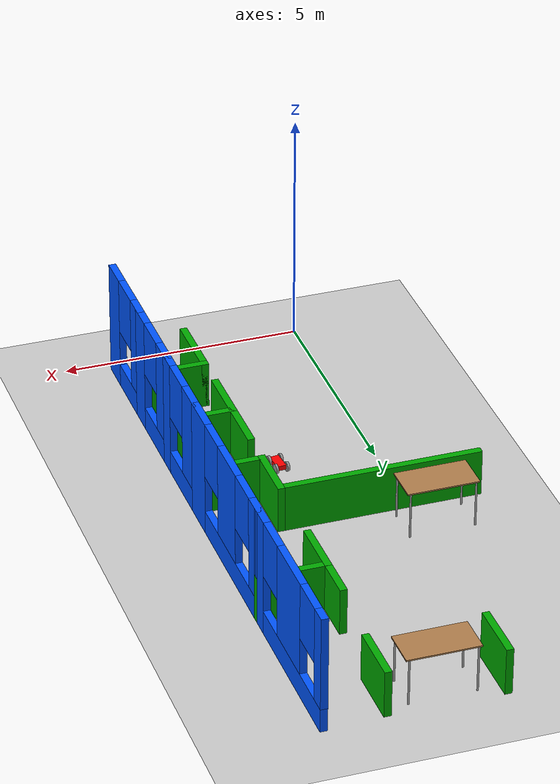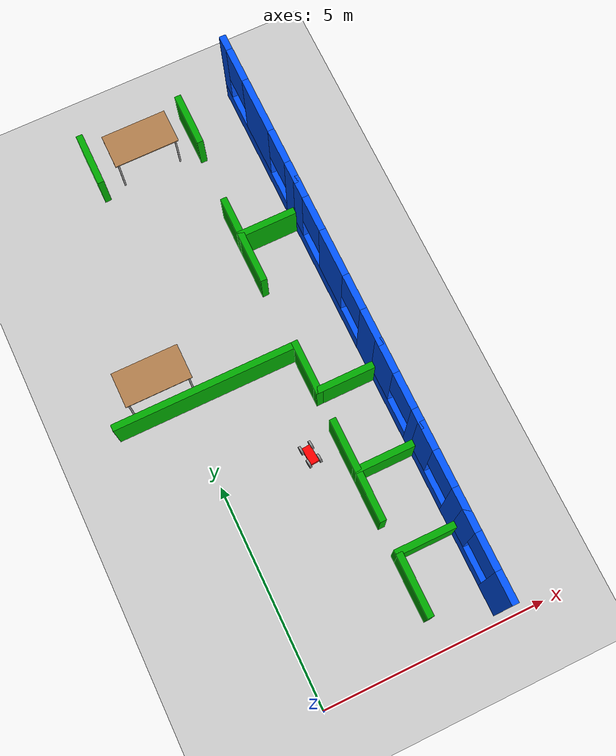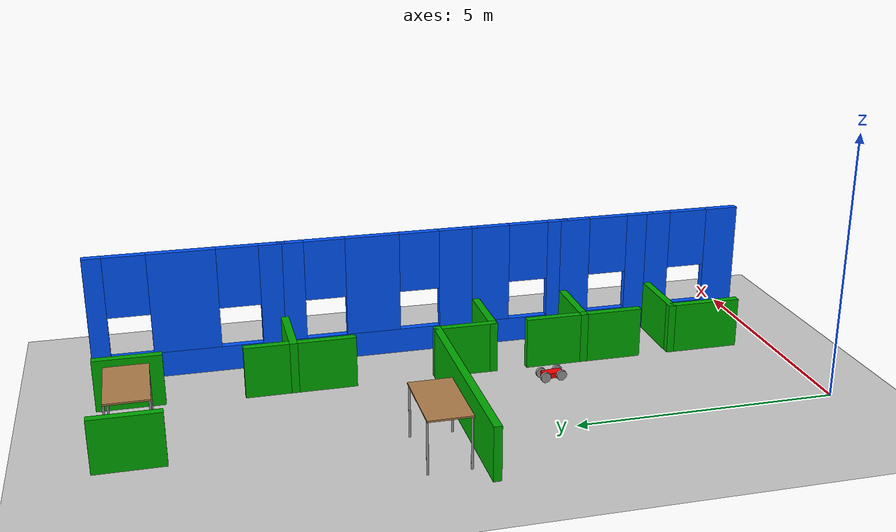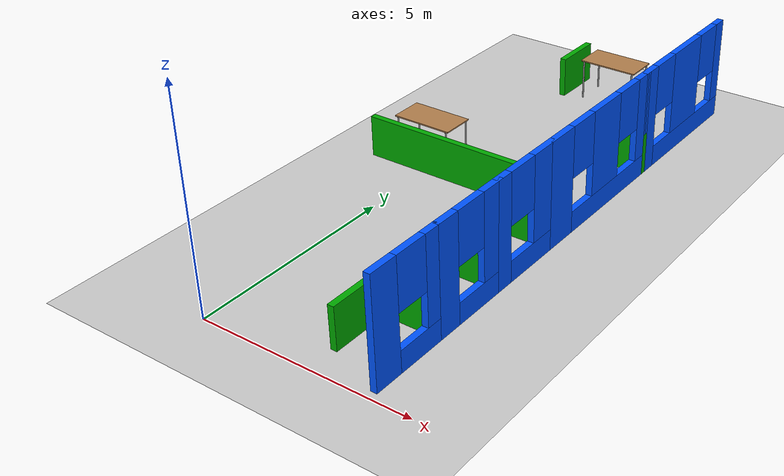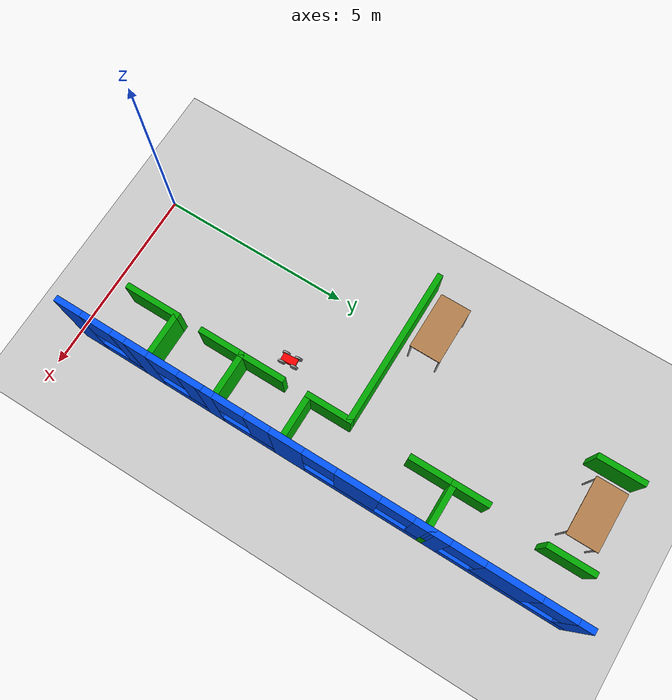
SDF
<sdf version="1.6">
 <world name="default">
  <model name="ground_plane">
   <static>1</static>
   <link name="link">
    <collision name="collision">
     <geometry><plane><normal>0 0 1</normal><size>100 100</size></plane></geometry>
     <surface><friction><ode><mu>100</mu><mu2>50</mu2></ode></friction></surface>
    </collision>
    <visual name="visual">
     <cast_shadows>0</cast_shadows>
     <geometry><plane><normal>0 0 1</normal><size>100 100</size></plane></geometry>
     <material>
      <script><uri>file://media/materials/scripts/gazebo.material</uri><name>Gazebo/Grey</name></script>
     </material>
    </visual>
   </link>
  </model>
  <model name="AMG">
   <pose>-3.41412 2.5474 0 0 -0 0</pose>
   <link name="Wall_101">
    <collision name="Wall_101_Collision">
     <geometry><box><size>1.25 0.15 1</size></box></geometry>
     <pose>0 0 0.5 0 -0 0</pose>
    </collision>
    <visual name="Wall_101_Visual">
     <pose>0 0 0.5 0 -0 0</pose>
     <geometry><box><size>1.25 0.15 1</size></box></geometry>
     <material>
      <script><uri>file://media/materials/scripts/gazebo.material</uri><name>Gazebo/Grey</name></script>
      <ambient>0 0.666667 0 1</ambient>
     </material>
     <meta><layer>0</layer></meta>
    </visual>
    <pose>6.17014 10.0946 0 0 0 -1.5708</pose>
   </link>
   <link name="Wall_103">
    <collision name="Wall_103_Collision">
     <geometry><box><size>1 0.15 1</size></box></geometry>
     <pose>0 0 0.5 0 -0 0</pose>
    </collision>
    <visual name="Wall_103_Visual">
     <pose>0 0 0.5 0 -0 0</pose>
     <geometry><box><size>1 0.15 1</size></box></geometry>
     <material>
      <script><uri>file://media/materials/scripts/gazebo.material</uri><name>Gazebo/Grey</name></script>
      <ambient>0 0.666667 0 1</ambient>
     </material>
     <meta><layer>0</layer></meta>
    </visual>
    <pose>6.07514 7.5266 0 0 -0 1.5708</pose>
   </link>
   <link name="Wall_105">
    <collision name="Wall_105_Collision">
     <geometry><box><size>1.25 0.15 1</size></box></geometry>
     <pose>0 0 0.5 0 -0 0</pose>
    </collision>
    <visual name="Wall_105_Visual">
     <pose>0 0 0.5 0 -0 0</pose>
     <geometry><box><size>1.25 0.15 1</size></box></geometry>
     <material>
      <script><uri>file://media/materials/scripts/gazebo.material</uri><name>Gazebo/Grey</name></script>
      <ambient>0 0.666667 0 1</ambient>
     </material>
     <meta><layer>0</layer></meta>
    </visual>
    <pose>3.82113 10.1446 0 0 0 -1.5708</pose>
   </link>
   <link name="Wall_45">
    <pose>7.42514 -1.3734 0 0 -0 1.5708</pose>
    <visual name="Wall_45_Visual_0">
     <pose>-0.657384 0 1.25 0 -0 0</pose>
     <geometry><box><size>0.685231 0.15 2.5</size></box></geometry>
     <material>
      <script><uri>file://media/materials/scripts/gazebo.material</uri><name>Gazebo/Grey</name></script>
      <ambient>0 0.333333 1 1</ambient>
     </material>
     <meta><layer>0</layer></meta>
    </visual>
    <collision name="Wall_45_Collision_0">
     <geometry><box><size>0.685231 0.15 2.5</size></box></geometry>
     <pose>-0.657384 0 1.25 0 -0 0</pose>
    </collision>
    <visual name="Wall_45_Visual_1">
     <pose>0.342616 0 0.25 0 -0 0</pose>
     <geometry><box><size>1.31477 0.15 0.5</size></box></geometry>
     <material>
      <script><uri>file://media/materials/scripts/gazebo.material</uri><name>Gazebo/Grey</name></script>
      <ambient>0 0.333333 1 1</ambient>
     </material>
     <meta><layer>0</layer></meta>
    </visual>
    <collision name="Wall_45_Collision_1">
     <geometry><box><size>1.31477 0.15 0.5</size></box></geometry>
     <pose>0.342616 0 0.25 0 -0 0</pose>
    </collision>
    <visual name="Wall_45_Visual_2">
     <pose>0.742616 0 1.5 0 -0 0</pose>
     <geometry><box><size>0.514769 0.15 2</size></box></geometry>
     <material>
      <script><uri>file://media/materials/scripts/gazebo.material</uri><name>Gazebo/Grey</name></script>
      <ambient>0 0.333333 1 1</ambient>
     </material>
     <meta><layer>0</layer></meta>
    </visual>
    <collision name="Wall_45_Collision_2">
     <geometry><box><size>0.514769 0.15 2</size></box></geometry>
     <pose>0.742616 0 1.5 0 -0 0</pose>
    </collision>
    <visual name="Wall_45_Visual_3">
     <pose>0.085231 0 1.9 0 -0 0</pose>
     <geometry><box><size>0.8 0.15 1.2</size></box></geometry>
     <material>
      <script><uri>file://media/materials/scripts/gazebo.material</uri><name>Gazebo/Grey</name></script>
      <ambient>0 0.333333 1 1</ambient>
     </material>
     <meta><layer>0</layer></meta>
    </visual>
    <collision name="Wall_45_Collision_3">
     <geometry><box><size>0.8 0.15 1.2</size></box></geometry>
     <pose>0.085231 0 1.9 0 -0 0</pose>
    </collision>
   </link>
   <link name="Wall_46">
    <collision name="Wall_46_Collision">
     <geometry><box><size>1.5 0.15 1</size></box></geometry>
     <pose>0 0 0.5 0 -0 0</pose>
    </collision>
    <visual name="Wall_46_Visual">
     <pose>0 0 0.5 0 -0 0</pose>
     <geometry><box><size>1.5 0.15 1</size></box></geometry>
     <material>
      <script><uri>file://media/materials/scripts/gazebo.material</uri><name>Gazebo/Grey</name></script>
      <ambient>0 0.666667 0 1</ambient>
     </material>
     <meta><layer>0</layer></meta>
    </visual>
    <pose>6.75014 -0.448405 0 0 -0 3.14159</pose>
   </link>
   <link name="Wall_47">
    <collision name="Wall_47_Collision">
     <geometry><box><size>1.5 0.15 1</size></box></geometry>
     <pose>0 0 0.5 0 -0 0</pose>
    </collision>
    <visual name="Wall_47_Visual">
     <pose>0 0 0.5 0 -0 0</pose>
     <geometry><box><size>1.5 0.15 1</size></box></geometry>
     <material>
      <script><uri>file://media/materials/scripts/gazebo.material</uri><name>Gazebo/Grey</name></script>
      <ambient>0 0.666667 0 1</ambient>
     </material>
     <meta><layer>0</layer></meta>
    </visual>
    <pose>6.07514 -1.1234 0 0 0 -1.5708</pose>
   </link>
   <link name="Wall_55">
    <pose>7.42514 0.476595 0 0 -0 1.5708</pose>
    <visual name="Wall_55_Visual_0">
     <pose>-0.710563 0 1.25 0 -0 0</pose>
     <geometry><box><size>0.578874 0.15 2.5</size></box></geometry>
     <material>
      <script><uri>file://media/materials/scripts/gazebo.material</uri><name>Gazebo/Grey</name></script>
      <ambient>0 0.333333 1 1</ambient>
     </material>
     <meta><layer>0</layer></meta>
    </visual>
    <collision name="Wall_55_Collision_0">
     <geometry><box><size>0.578874 0.15 2.5</size></box></geometry>
     <pose>-0.710563 0 1.25 0 -0 0</pose>
    </collision>
    <visual name="Wall_55_Visual_1">
     <pose>0.289437 0 0.25 0 -0 0</pose>
     <geometry><box><size>1.42113 0.15 0.5</size></box></geometry>
     <material>
      <script><uri>file://media/materials/scripts/gazebo.material</uri><name>Gazebo/Grey</name></script>
      <ambient>0 0.333333 1 1</ambient>
     </material>
     <meta><layer>0</layer></meta>
    </visual>
    <collision name="Wall_55_Collision_1">
     <geometry><box><size>1.42113 0.15 0.5</size></box></geometry>
     <pose>0.289437 0 0.25 0 -0 0</pose>
    </collision>
    <visual name="Wall_55_Visual_2">
     <pose>0.689437 0 1.5 0 -0 0</pose>
     <geometry><box><size>0.621126 0.15 2</size></box></geometry>
     <material>
      <script><uri>file://media/materials/scripts/gazebo.material</uri><name>Gazebo/Grey</name></script>
      <ambient>0 0.333333 1 1</ambient>
     </material>
     <meta><layer>0</layer></meta>
    </visual>
    <collision name="Wall_55_Collision_2">
     <geometry><box><size>0.621126 0.15 2</size></box></geometry>
     <pose>0.689437 0 1.5 0 -0 0</pose>
    </collision>
    <visual name="Wall_55_Visual_3">
     <pose>-0.021126 0 1.9 0 -0 0</pose>
     <geometry><box><size>0.8 0.15 1.2</size></box></geometry>
     <material>
      <script><uri>file://media/materials/scripts/gazebo.material</uri><name>Gazebo/Grey</name></script>
      <ambient>0 0.333333 1 1</ambient>
     </material>
     <meta><layer>0</layer></meta>
    </visual>
    <collision name="Wall_55_Collision_3">
     <geometry><box><size>0.8 0.15 1.2</size></box></geometry>
     <pose>-0.021126 0 1.9 0 -0 0</pose>
    </collision>
   </link>
   <link name="Wall_56">
    <collision name="Wall_56_Collision">
     <geometry><box><size>1.5 0.15 1</size></box></geometry>
     <pose>0 0 0.5 0 -0 0</pose>
    </collision>
    <visual name="Wall_56_Visual">
     <pose>0 0 0.5 0 -0 0</pose>
     <geometry><box><size>1.5 0.15 1</size></box></geometry>
     <material>
      <script><uri>file://media/materials/scripts/gazebo.material</uri><name>Gazebo/Grey</name></script>
      <ambient>0 0.666667 0 1</ambient>
     </material>
     <meta><layer>0</layer></meta>
    </visual>
    <pose>6.75014 1.40159 0 0 -0 3.14159</pose>
   </link>
   <link name="Wall_57">
    <collision name="Wall_57_Collision">
     <geometry><box><size>1.25 0.15 1</size></box></geometry>
     <pose>0 0 0.5 0 -0 0</pose>
    </collision>
    <visual name="Wall_57_Visual">
     <pose>0 0 0.5 0 -0 0</pose>
     <geometry><box><size>1.25 0.15 1</size></box></geometry>
     <material>
      <script><uri>file://media/materials/scripts/gazebo.material</uri><name>Gazebo/Grey</name></script>
      <ambient>0 0.666667 0 1</ambient>
     </material>
     <meta><layer>0</layer></meta>
    </visual>
    <pose>6.07514 0.851595 0 0 0 -1.5708</pose>
   </link>
   <link name="Wall_59">
    <collision name="Wall_59_Collision">
     <geometry><box><size>1.25 0.15 1</size></box></geometry>
     <pose>0 0 0.5 0 -0 0</pose>
    </collision>
    <visual name="Wall_59_Visual">
     <pose>0 0 0.5 0 -0 0</pose>
     <geometry><box><size>1.25 0.15 1</size></box></geometry>
     <material>
      <script><uri>file://media/materials/scripts/gazebo.material</uri><name>Gazebo/Grey</name></script>
      <ambient>0 0.666667 0 1</ambient>
     </material>
     <meta><layer>0</layer></meta>
    </visual>
    <pose>6.07514 1.95159 0 0 -0 1.5708</pose>
   </link>
   <link name="Wall_61">
    <pose>7.42514 2.3266 0 0 -0 1.5708</pose>
    <visual name="Wall_61_Visual_0">
     <pose>-0.785841 0 1.25 0 -0 0</pose>
     <geometry><box><size>0.428317 0.15 2.5</size></box></geometry>
     <material>
      <script><uri>file://media/materials/scripts/gazebo.material</uri><name>Gazebo/Grey</name></script>
      <ambient>0 0.333333 1 1</ambient>
     </material>
     <meta><layer>0</layer></meta>
    </visual>
    <collision name="Wall_61_Collision_0">
     <geometry><box><size>0.428317 0.15 2.5</size></box></geometry>
     <pose>-0.785841 0 1.25 0 -0 0</pose>
    </collision>
    <visual name="Wall_61_Visual_1">
     <pose>0.214159 0 0.25 0 -0 0</pose>
     <geometry><box><size>1.57168 0.15 0.5</size></box></geometry>
     <material>
      <script><uri>file://media/materials/scripts/gazebo.material</uri><name>Gazebo/Grey</name></script>
      <ambient>0 0.333333 1 1</ambient>
     </material>
     <meta><layer>0</layer></meta>
    </visual>
    <collision name="Wall_61_Collision_1">
     <geometry><box><size>1.57168 0.15 0.5</size></box></geometry>
     <pose>0.214159 0 0.25 0 -0 0</pose>
    </collision>
    <visual name="Wall_61_Visual_2">
     <pose>0.614159 0 1.5 0 -0 0</pose>
     <geometry><box><size>0.771683 0.15 2</size></box></geometry>
     <material>
      <script><uri>file://media/materials/scripts/gazebo.material</uri><name>Gazebo/Grey</name></script>
      <ambient>0 0.333333 1 1</ambient>
     </material>
     <meta><layer>0</layer></meta>
    </visual>
    <collision name="Wall_61_Collision_2">
     <geometry><box><size>0.771683 0.15 2</size></box></geometry>
     <pose>0.614159 0 1.5 0 -0 0</pose>
    </collision>
    <visual name="Wall_61_Visual_3">
     <pose>-0.171683 0 1.9 0 -0 0</pose>
     <geometry><box><size>0.8 0.15 1.2</size></box></geometry>
     <material>
      <script><uri>file://media/materials/scripts/gazebo.material</uri><name>Gazebo/Grey</name></script>
      <ambient>0 0.333333 1 1</ambient>
     </material>
     <meta><layer>0</layer></meta>
    </visual>
    <collision name="Wall_61_Collision_3">
     <geometry><box><size>0.8 0.15 1.2</size></box></geometry>
     <pose>-0.171683 0 1.9 0 -0 0</pose>
    </collision>
   </link>
   <link name="Wall_62">
    <collision name="Wall_62_Collision">
     <geometry><box><size>1.5 0.15 1</size></box></geometry>
     <pose>0 0 0.5 0 -0 0</pose>
    </collision>
    <visual name="Wall_62_Visual">
     <pose>0 0 0.5 0 -0 0</pose>
     <geometry><box><size>1.5 0.15 1</size></box></geometry>
     <material>
      <script><uri>file://media/materials/scripts/gazebo.material</uri><name>Gazebo/Grey</name></script>
      <ambient>0 0.666667 0 1</ambient>
     </material>
     <meta><layer>0</layer></meta>
    </visual>
    <pose>6.75014 3.2516 0 0 -0 3.14159</pose>
   </link>
   <link name="Wall_63">
    <collision name="Wall_63_Collision">
     <geometry><box><size>1.25 0.15 1</size></box></geometry>
     <pose>0 0 0.5 0 -0 0</pose>
    </collision>
    <visual name="Wall_63_Visual">
     <pose>0 0 0.5 0 -0 0</pose>
     <geometry><box><size>1.25 0.15 1</size></box></geometry>
     <material>
      <script><uri>file://media/materials/scripts/gazebo.material</uri><name>Gazebo/Grey</name></script>
      <ambient>0 0.666667 0 1</ambient>
     </material>
     <meta><layer>0</layer></meta>
    </visual>
    <pose>6.07514 3.80159 0 0 -0 1.5708</pose>
   </link>
   <link name="Wall_65">
    <pose>7.42514 5.17659 0 0 -0 1.5708</pose>
    <visual name="Wall_65_Visual_0">
     <pose>-1.58729 0 1.25 0 -0 0</pose>
     <geometry><box><size>0.825422 0.15 2.5</size></box></geometry>
     <material>
      <script><uri>file://media/materials/scripts/gazebo.material</uri><name>Gazebo/Grey</name></script>
      <ambient>0 0.333333 1 1</ambient>
     </material>
     <meta><layer>0</layer></meta>
    </visual>
    <collision name="Wall_65_Collision_0">
     <geometry><box><size>0.825422 0.15 2.5</size></box></geometry>
     <pose>-1.58729 0 1.25 0 -0 0</pose>
    </collision>
    <visual name="Wall_65_Visual_1">
     <pose>0.412711 0 0.25 0 -0 0</pose>
     <geometry><box><size>3.17458 0.15 0.5</size></box></geometry>
     <material>
      <script><uri>file://media/materials/scripts/gazebo.material</uri><name>Gazebo/Grey</name></script>
      <ambient>0 0.333333 1 1</ambient>
     </material>
     <meta><layer>0</layer></meta>
    </visual>
    <collision name="Wall_65_Collision_1">
     <geometry><box><size>3.17458 0.15 0.5</size></box></geometry>
     <pose>0.412711 0 0.25 0 -0 0</pose>
    </collision>
    <visual name="Wall_65_Visual_2">
     <pose>0.161716 0 1.5 0 -0 0</pose>
     <geometry><box><size>1.07259 0.15 2</size></box></geometry>
     <material>
      <script><uri>file://media/materials/scripts/gazebo.material</uri><name>Gazebo/Grey</name></script>
      <ambient>0 0.333333 1 1</ambient>
     </material>
     <meta><layer>0</layer></meta>
    </visual>
    <collision name="Wall_65_Collision_2">
     <geometry><box><size>1.07259 0.15 2</size></box></geometry>
     <pose>0.161716 0 1.5 0 -0 0</pose>
    </collision>
    <visual name="Wall_65_Visual_3">
     <pose>1.749 0 1.5 0 -0 0</pose>
     <geometry><box><size>0.50199 0.15 2</size></box></geometry>
     <material>
      <script><uri>file://media/materials/scripts/gazebo.material</uri><name>Gazebo/Grey</name></script>
      <ambient>0 0.333333 1 1</ambient>
     </material>
     <meta><layer>0</layer></meta>
    </visual>
    <collision name="Wall_65_Collision_3">
     <geometry><box><size>0.50199 0.15 2</size></box></geometry>
     <pose>1.749 0 1.5 0 -0 0</pose>
    </collision>
    <visual name="Wall_65_Visual_4">
     <pose>-0.774578 0 1.9 0 -0 0</pose>
     <geometry><box><size>0.8 0.15 1.2</size></box></geometry>
     <material>
      <script><uri>file://media/materials/scripts/gazebo.material</uri><name>Gazebo/Grey</name></script>
      <ambient>0 0.333333 1 1</ambient>
     </material>
     <meta><layer>0</layer></meta>
    </visual>
    <collision name="Wall_65_Collision_4">
     <geometry><box><size>0.8 0.15 1.2</size></box></geometry>
     <pose>-0.774578 0 1.9 0 -0 0</pose>
    </collision>
    <visual name="Wall_65_Visual_5">
     <pose>1.09801 0 1.9 0 -0 0</pose>
     <geometry><box><size>0.8 0.15 1.2</size></box></geometry>
     <material>
      <script><uri>file://media/materials/scripts/gazebo.material</uri><name>Gazebo/Grey</name></script>
      <ambient>0 0.333333 1 1</ambient>
     </material>
     <meta><layer>0</layer></meta>
    </visual>
    <collision name="Wall_65_Collision_5">
     <geometry><box><size>0.8 0.15 1.2</size></box></geometry>
     <pose>1.09801 0 1.9 0 -0 0</pose>
    </collision>
   </link>
   <link name="Wall_66">
    <collision name="Wall_66_Collision">
     <geometry><box><size>1.5 0.15 1</size></box></geometry>
     <pose>0 0 0.5 0 -0 0</pose>
    </collision>
    <visual name="Wall_66_Visual">
     <pose>0 0 0.5 0 -0 0</pose>
     <geometry><box><size>1.5 0.15 1</size></box></geometry>
     <material>
      <script><uri>file://media/materials/scripts/gazebo.material</uri><name>Gazebo/Grey</name></script>
      <ambient>0 0.666667 0 1</ambient>
     </material>
     <meta><layer>0</layer></meta>
    </visual>
    <pose>6.75014 7.10159 0 0 -0 3.14159</pose>
   </link>
   <link name="Wall_68">
    <collision name="Wall_68_Collision">
     <geometry><box><size>1.25 0.15 1</size></box></geometry>
     <pose>0 0 0.5 0 -0 0</pose>
    </collision>
    <visual name="Wall_68_Visual">
     <pose>0 0 0.5 0 -0 0</pose>
     <geometry><box><size>1.25 0.15 1</size></box></geometry>
     <material>
      <script><uri>file://media/materials/scripts/gazebo.material</uri><name>Gazebo/Grey</name></script>
      <ambient>0 0.666667 0 1</ambient>
     </material>
     <meta><layer>0</layer></meta>
    </visual>
    <pose>6.07514 6.55159 0 0 0 -1.5708</pose>
   </link>
   <link name="Wall_70">
    <pose>7.425 8.9014 0 0 -0 1.57087</pose>
    <visual name="Wall_70_Visual_0">
     <pose>-1.62165 0 1.25 0 -0 0</pose>
     <geometry><box><size>0.506693 0.15 2.5</size></box></geometry>
     <material>
      <script><uri>file://media/materials/scripts/gazebo.material</uri><name>Gazebo/Grey</name></script>
      <ambient>0 0.333333 1 1</ambient>
     </material>
     <meta><layer>0</layer></meta>
    </visual>
    <collision name="Wall_70_Collision_0">
     <geometry><box><size>0.506693 0.15 2.5</size></box></geometry>
     <pose>-1.62165 0 1.25 0 -0 0</pose>
    </collision>
    <visual name="Wall_70_Visual_1">
     <pose>0.253346 0 0.25 0 -0 0</pose>
     <geometry><box><size>3.24331 0.15 0.5</size></box></geometry>
     <material>
      <script><uri>file://media/materials/scripts/gazebo.material</uri><name>Gazebo/Grey</name></script>
      <ambient>0 0.333333 1 1</ambient>
     </material>
     <meta><layer>0</layer></meta>
    </visual>
    <collision name="Wall_70_Collision_1">
     <geometry><box><size>3.24331 0.15 0.5</size></box></geometry>
     <pose>0.253346 0 0.25 0 -0 0</pose>
    </collision>
    <visual name="Wall_70_Visual_2">
     <pose>0.074878 0 1.5 0 -0 0</pose>
     <geometry><box><size>1.28637 0.15 2</size></box></geometry>
     <material>
      <script><uri>file://media/materials/scripts/gazebo.material</uri><name>Gazebo/Grey</name></script>
      <ambient>0 0.333333 1 1</ambient>
     </material>
     <meta><layer>0</layer></meta>
    </visual>
    <collision name="Wall_70_Collision_2">
     <geometry><box><size>1.28637 0.15 2</size></box></geometry>
     <pose>0.074878 0 1.5 0 -0 0</pose>
    </collision>
    <visual name="Wall_70_Visual_3">
     <pose>1.69653 0 1.5 0 -0 0</pose>
     <geometry><box><size>0.356936 0.15 2</size></box></geometry>
     <material>
      <script><uri>file://media/materials/scripts/gazebo.material</uri><name>Gazebo/Grey</name></script>
      <ambient>0 0.333333 1 1</ambient>
     </material>
     <meta><layer>0</layer></meta>
    </visual>
    <collision name="Wall_70_Collision_3">
     <geometry><box><size>0.356936 0.15 2</size></box></geometry>
     <pose>1.69653 0 1.5 0 -0 0</pose>
    </collision>
    <visual name="Wall_70_Visual_4">
     <pose>-0.968307 0 1.9 0 -0 0</pose>
     <geometry><box><size>0.8 0.15 1.2</size></box></geometry>
     <material>
      <script><uri>file://media/materials/scripts/gazebo.material</uri><name>Gazebo/Grey</name></script>
      <ambient>0 0.333333 1 1</ambient>
     </material>
     <meta><layer>0</layer></meta>
    </visual>
    <collision name="Wall_70_Collision_4">
     <geometry><box><size>0.8 0.15 1.2</size></box></geometry>
     <pose>-0.968307 0 1.9 0 -0 0</pose>
    </collision>
    <visual name="Wall_70_Visual_5">
     <pose>1.11806 0 1.9 0 -0 0</pose>
     <geometry><box><size>0.8 0.15 1.2</size></box></geometry>
     <material>
      <script><uri>file://media/materials/scripts/gazebo.material</uri><name>Gazebo/Grey</name></script>
      <ambient>0 0.333333 1 1</ambient>
     </material>
     <meta><layer>0</layer></meta>
    </visual>
    <collision name="Wall_70_Collision_5">
     <geometry><box><size>0.8 0.15 1.2</size></box></geometry>
     <pose>1.11806 0 1.9 0 -0 0</pose>
    </collision>
   </link>
   <link name="Wall_97">
    <collision name="Wall_97_Collision">
     <geometry><box><size>4.25 0.15 1</size></box></geometry>
     <pose>0 0 0.5 0 -0 0</pose>
    </collision>
    <visual name="Wall_97_Visual">
     <pose>0 0 0.5 0 -0 0</pose>
     <geometry><box><size>4.25 0.15 1</size></box></geometry>
     <material>
      <script><uri>file://media/materials/scripts/gazebo.material</uri><name>Gazebo/Grey</name></script>
      <ambient>0 0.666667 0 1</ambient>
     </material>
     <meta><layer>0</layer></meta>
    </visual>
    <pose>4.02513 4.35159 0 0 -0 3.14159</pose>
   </link>
   <static>1</static>
  </model>
  <model name="table_1_clone_7">
   <static>1</static>
   <link name="link">
    <collision name="surface">
     <pose>0 0 1 0 -0 0</pose>
     <geometry><box><size>1.5 0.8 0.03</size></box></geometry>
     <surface><friction><ode><mu>0.6</mu><mu2>0.6</mu2></ode></friction></surface>
    </collision>
    <visual name="visual1">
     <pose>0 0 1 0 -0 0</pose>
     <geometry><box><size>1.5 0.8 0.03</size></box></geometry>
     <material>
      <script><uri>file://media/materials/scripts/gazebo.material</uri><name>Gazebo/Wood</name></script>
     </material>
    </visual>
    <collision name="front_left_leg">
     <pose>0.68 0.38 0.5 0 -0 0</pose>
     <geometry><cylinder><radius>0.02</radius><length>1</length></cylinder></geometry>
    </collision>
    <visual name="front_left_leg">
     <pose>0.68 0.38 0.5 0 -0 0</pose>
     <geometry><cylinder><radius>0.02</radius><length>1</length></cylinder></geometry>
     <material>
      <script><uri>file://media/materials/scripts/gazebo.material</uri><name>Gazebo/Grey</name></script>
     </material>
    </visual>
    <collision name="front_right_leg">
     <pose>0.68 -0.38 0.5 0 -0 0</pose>
     <geometry><cylinder><radius>0.02</radius><length>1</length></cylinder></geometry>
    </collision>
    <visual name="front_right_leg">
     <pose>0.68 -0.38 0.5 0 -0 0</pose>
     <geometry><cylinder><radius>0.02</radius><length>1</length></cylinder></geometry>
     <material>
      <script><uri>file://media/materials/scripts/gazebo.material</uri><name>Gazebo/Grey</name></script>
     </material>
    </visual>
    <collision name="back_right_leg">
     <pose>-0.68 -0.38 0.5 0 -0 0</pose>
     <geometry><cylinder><radius>0.02</radius><length>1</length></cylinder></geometry>
    </collision>
    <visual name="back_right_leg">
     <pose>-0.68 -0.38 0.5 0 -0 0</pose>
     <geometry><cylinder><radius>0.02</radius><length>1</length></cylinder></geometry>
     <material>
      <script><uri>file://media/materials/scripts/gazebo.material</uri><name>Gazebo/Grey</name></script>
     </material>
    </visual>
    <collision name="back_left_leg">
     <pose>-0.68 0.38 0.5 0 -0 0</pose>
     <geometry><cylinder><radius>0.02</radius><length>1</length></cylinder></geometry>
    </collision>
    <visual name="back_left_leg">
     <pose>-0.68 0.38 0.5 0 -0 0</pose>
     <geometry><cylinder><radius>0.02</radius><length>1</length></cylinder></geometry>
     <material>
      <script><uri>file://media/materials/scripts/gazebo.material</uri><name>Gazebo/Grey</name></script>
     </material>
    </visual>
   </link>
   <pose>-0.330248 7.57037 0 0 -0 0</pose>
  </model>
  <model name="table_1_clone_9">
   <static>1</static>
   <link name="link">
    <collision name="surface">
     <pose>0 0 1 0 -0 0</pose>
     <geometry><box><size>1.5 0.8 0.03</size></box></geometry>
     <surface><friction><ode><mu>0.6</mu><mu2>0.6</mu2></ode></friction></surface>
    </collision>
    <visual name="visual1">
     <pose>0 0 1 0 -0 0</pose>
     <geometry><box><size>1.5 0.8 0.03</size></box></geometry>
     <material>
      <script><uri>file://media/materials/scripts/gazebo.material</uri><name>Gazebo/Wood</name></script>
     </material>
    </visual>
    <collision name="front_left_leg">
     <pose>0.68 0.38 0.5 0 -0 0</pose>
     <geometry><cylinder><radius>0.02</radius><length>1</length></cylinder></geometry>
    </collision>
    <visual name="front_left_leg">
     <pose>0.68 0.38 0.5 0 -0 0</pose>
     <geometry><cylinder><radius>0.02</radius><length>1</length></cylinder></geometry>
     <material>
      <script><uri>file://media/materials/scripts/gazebo.material</uri><name>Gazebo/Grey</name></script>
     </material>
    </visual>
    <collision name="front_right_leg">
     <pose>0.68 -0.38 0.5 0 -0 0</pose>
     <geometry><cylinder><radius>0.02</radius><length>1</length></cylinder></geometry>
    </collision>
    <visual name="front_right_leg">
     <pose>0.68 -0.38 0.5 0 -0 0</pose>
     <geometry><cylinder><radius>0.02</radius><length>1</length></cylinder></geometry>
     <material>
      <script><uri>file://media/materials/scripts/gazebo.material</uri><name>Gazebo/Grey</name></script>
     </material>
    </visual>
    <collision name="back_right_leg">
     <pose>-0.68 -0.38 0.5 0 -0 0</pose>
     <geometry><cylinder><radius>0.02</radius><length>1</length></cylinder></geometry>
    </collision>
    <visual name="back_right_leg">
     <pose>-0.68 -0.38 0.5 0 -0 0</pose>
     <geometry><cylinder><radius>0.02</radius><length>1</length></cylinder></geometry>
     <material>
      <script><uri>file://media/materials/scripts/gazebo.material</uri><name>Gazebo/Grey</name></script>
     </material>
    </visual>
    <collision name="back_left_leg">
     <pose>-0.68 0.38 0.5 0 -0 0</pose>
     <geometry><cylinder><radius>0.02</radius><length>1</length></cylinder></geometry>
    </collision>
    <visual name="back_left_leg">
     <pose>-0.68 0.38 0.5 0 -0 0</pose>
     <geometry><cylinder><radius>0.02</radius><length>1</length></cylinder></geometry>
     <material>
      <script><uri>file://media/materials/scripts/gazebo.material</uri><name>Gazebo/Grey</name></script>
     </material>
    </visual>
   </link>
   <pose>1.58886 12.6552 0 0 -0 0</pose>
  </model>
  <model name="Car">
   <link name="link_2">
    <pose>0.001366 -0.012518 1e-06 0 -0 0</pose>
    <inertial>
     <mass>1</mass>
     <inertia>
      <ixx>0.166667</ixx>
      <ixy>0</ixy>
      <ixz>0</ixz>
      <iyy>0.166667</iyy>
      <iyz>0</iyz>
      <izz>0.166667</izz>
     </inertia>
    </inertial>
    <visual name="visual">
     <geometry><box><size>0.2 0.4 0.1</size></box></geometry>
     <material>
      <lighting>1</lighting>
      <script><uri>file://media/materials/scripts/gazebo.material</uri><name>Gazebo/Grey</name></script>
      <shader type="pixel"><normal_map>__default__</normal_map></shader>
      <ambient>1 0 0 1</ambient>
      <diffuse>1 0 0 1</diffuse>
      <specular>0.01 0.01 0.01 1</specular>
      <emissive>0 0 0 1</emissive>
     </material>
    </visual>
    <collision name="collision">
     <geometry><box><size>0.2 0.4 0.1</size></box></geometry>
     <surface>
      <friction>
       <ode><mu>1</mu><mu2>1</mu2><fdir1>0 0 0</fdir1><slip1>0</slip1><slip2>0</slip2></ode>
       <torsional>
        <coefficient>1</coefficient>
        <patch_radius>0</patch_radius>
        <surface_radius>0</surface_radius>
        <use_patch_radius>1</use_patch_radius>
        <ode><slip>0</slip></ode>
       </torsional>
      </friction>
      <bounce><restitution_coefficient>0</restitution_coefficient><threshold>1e+06</threshold></bounce>
      <contact>
       <collide_without_contact>0</collide_without_contact>
       <collide_without_contact_bitmask>1</collide_without_contact_bitmask>
       <collide_bitmask>1</collide_bitmask>
       <ode>
        <soft_cfm>0</soft_cfm>
        <soft_erp>0.2</soft_erp>
        <kp>1e+13</kp>
        <kd>1</kd>
        <max_vel>0.01</max_vel>
        <min_depth>0</min_depth>
       </ode>
       <bullet>
        <split_impulse>1</split_impulse>
        <split_impulse_penetration_threshold>-0.01</split_impulse_penetration_threshold>
        <soft_cfm>0</soft_cfm>
        <soft_erp>0.2</soft_erp>
        <kp>1e+13</kp>
        <kd>1</kd>
       </bullet>
      </contact>
     </surface>
    </collision>
   </link>
   <link name="link_3">
    <pose>-0.121194 -0.15899 -2e-06 1.5707 0 1.5707</pose>
    <inertial>
     <mass>1</mass>
     <inertia><ixx>0.145833</ixx><ixy>0</ixy><ixz>0</ixz><iyy>0.145833</iyy><iyz>0</iyz><izz>0.125</izz></inertia>
    </inertial>
    <visual name="visual">
     <geometry><cylinder><radius>0.1</radius><length>0.05</length></cylinder></geometry>
     <material>
      <lighting>1</lighting>
      <script><uri>file://media/materials/scripts/gazebo.material</uri><name>Gazebo/Grey</name></script>
      <shader type="pixel"><normal_map>__default__</normal_map></shader>
      <ambient>0 0 0 1</ambient>
      <diffuse>0 0 0 1</diffuse>
      <specular>0.01 0.01 0.01 1</specular>
      <emissive>0 0 0 1</emissive>
     </material>
    </visual>
    <collision name="collision">
     <geometry><cylinder><radius>0.1</radius><length>0.05</length></cylinder></geometry>
     <surface>
      <friction>
       <ode><mu>1</mu><mu2>1</mu2><fdir1>0 0 0</fdir1><slip1>0</slip1><slip2>0</slip2></ode>
       <torsional>
        <coefficient>1</coefficient>
        <patch_radius>0</patch_radius>
        <surface_radius>0</surface_radius>
        <use_patch_radius>1</use_patch_radius>
        <ode><slip>0</slip></ode>
       </torsional>
      </friction>
      <bounce><restitution_coefficient>0</restitution_coefficient><threshold>1e+06</threshold></bounce>
      <contact>
       <collide_without_contact>0</collide_without_contact>
       <collide_without_contact_bitmask>1</collide_without_contact_bitmask>
       <collide_bitmask>1</collide_bitmask>
       <ode>
        <soft_cfm>0</soft_cfm>
        <soft_erp>0.2</soft_erp>
        <kp>1e+13</kp>
        <kd>1</kd>
        <max_vel>0.01</max_vel>
        <min_depth>0</min_depth>
       </ode>
       <bullet>
        <split_impulse>1</split_impulse>
        <split_impulse_penetration_threshold>-0.01</split_impulse_penetration_threshold>
        <soft_cfm>0</soft_cfm>
        <soft_erp>0.2</soft_erp>
        <kp>1e+13</kp>
        <kd>1</kd>
       </bullet>
      </contact>
     </surface>
    </collision>
   </link>
   <link name="link_3_clone">
    <pose>0.127787 -0.166069 1e-06 1.5707 0 1.5707</pose>
    <inertial>
     <mass>1</mass>
     <inertia><ixx>0.145833</ixx><ixy>0</ixy><ixz>0</ixz><iyy>0.145833</iyy><iyz>0</iyz><izz>0.125</izz></inertia>
    </inertial>
    <visual name="visual">
     <geometry><cylinder><radius>0.1</radius><length>0.05</length></cylinder></geometry>
     <material>
      <lighting>1</lighting>
      <script><uri>file://media/materials/scripts/gazebo.material</uri><name>Gazebo/Grey</name></script>
      <shader type="pixel"><normal_map>__default__</normal_map></shader>
      <ambient>0 0 0 1</ambient>
      <diffuse>0 0 0 1</diffuse>
      <specular>0.01 0.01 0.01 1</specular>
      <emissive>0 0 0 1</emissive>
     </material>
    </visual>
    <collision name="collision">
     <geometry><cylinder><radius>0.1</radius><length>0.05</length></cylinder></geometry>
     <surface>
      <friction>
       <ode><mu>1</mu><mu2>1</mu2><fdir1>0 0 0</fdir1><slip1>0</slip1><slip2>0</slip2></ode>
       <torsional>
        <coefficient>1</coefficient>
        <patch_radius>0</patch_radius>
        <surface_radius>0</surface_radius>
        <use_patch_radius>1</use_patch_radius>
        <ode><slip>0</slip></ode>
       </torsional>
      </friction>
      <bounce><restitution_coefficient>0</restitution_coefficient><threshold>1e+06</threshold></bounce>
      <contact>
       <collide_without_contact>0</collide_without_contact>
       <collide_without_contact_bitmask>1</collide_without_contact_bitmask>
       <collide_bitmask>1</collide_bitmask>
       <ode>
        <soft_cfm>0</soft_cfm>
        <soft_erp>0.2</soft_erp>
        <kp>1e+13</kp>
        <kd>1</kd>
        <max_vel>0.01</max_vel>
        <min_depth>0</min_depth>
       </ode>
       <bullet>
        <split_impulse>1</split_impulse>
        <split_impulse_penetration_threshold>-0.01</split_impulse_penetration_threshold>
        <soft_cfm>0</soft_cfm>
        <soft_erp>0.2</soft_erp>
        <kp>1e+13</kp>
        <kd>1</kd>
       </bullet>
      </contact>
     </surface>
    </collision>
   </link>
   <link name="link_3_clone_0">
    <pose>-0.123634 0.167574 1e-06 1.5707 0 1.5707</pose>
    <inertial>
     <mass>1</mass>
     <inertia><ixx>0.145833</ixx><ixy>0</ixy><ixz>0</ixz><iyy>0.145833</iyy><iyz>0</iyz><izz>0.125</izz></inertia>
    </inertial>
    <visual name="visual">
     <geometry><cylinder><radius>0.1</radius><length>0.05</length></cylinder></geometry>
     <material>
      <lighting>1</lighting>
      <script><uri>file://media/materials/scripts/gazebo.material</uri><name>Gazebo/Grey</name></script>
      <shader type="pixel"><normal_map>__default__</normal_map></shader>
      <ambient>0 0 0 1</ambient>
      <diffuse>0 0 0 1</diffuse>
      <specular>0.01 0.01 0.01 1</specular>
      <emissive>0 0 0 1</emissive>
     </material>
    </visual>
    <collision name="collision">
     <geometry><cylinder><radius>0.1</radius><length>0.05</length></cylinder></geometry>
     <surface>
      <friction>
       <ode><mu>1</mu><mu2>1</mu2><fdir1>0 0 0</fdir1><slip1>0</slip1><slip2>0</slip2></ode>
       <torsional>
        <coefficient>1</coefficient>
        <patch_radius>0</patch_radius>
        <surface_radius>0</surface_radius>
        <use_patch_radius>1</use_patch_radius>
        <ode><slip>0</slip></ode>
       </torsional>
      </friction>
      <bounce><restitution_coefficient>0</restitution_coefficient><threshold>1e+06</threshold></bounce>
      <contact>
       <collide_without_contact>0</collide_without_contact>
       <collide_without_contact_bitmask>1</collide_without_contact_bitmask>
       <collide_bitmask>1</collide_bitmask>
       <ode>
        <soft_cfm>0</soft_cfm>
        <soft_erp>0.2</soft_erp>
        <kp>1e+13</kp>
        <kd>1</kd>
        <max_vel>0.01</max_vel>
        <min_depth>0</min_depth>
       </ode>
       <bullet>
        <split_impulse>1</split_impulse>
        <split_impulse_penetration_threshold>-0.01</split_impulse_penetration_threshold>
        <soft_cfm>0</soft_cfm>
        <soft_erp>0.2</soft_erp>
        <kp>1e+13</kp>
        <kd>1</kd>
       </bullet>
      </contact>
     </surface>
    </collision>
   </link>
   <link name="link_3_clone_1">
    <pose>0.116366 0.169087 1e-06 1.5707 0 1.5707</pose>
    <inertial>
     <mass>1</mass>
     <inertia><ixx>0.145833</ixx><ixy>0</ixy><ixz>0</ixz><iyy>0.145833</iyy><iyz>0</iyz><izz>0.125</izz></inertia>
    </inertial>
    <visual name="visual">
     <geometry><cylinder><radius>0.1</radius><length>0.05</length></cylinder></geometry>
     <material>
      <lighting>1</lighting>
      <script><uri>file://media/materials/scripts/gazebo.material</uri><name>Gazebo/Grey</name></script>
      <shader type="pixel"><normal_map>__default__</normal_map></shader>
      <ambient>0 0 0 1</ambient>
      <diffuse>0 0 0 1</diffuse>
      <specular>0.01 0.01 0.01 1</specular>
      <emissive>0 0 0 1</emissive>
     </material>
    </visual>
    <collision name="collision">
     <geometry><cylinder><radius>0.1</radius><length>0.05</length></cylinder></geometry>
     <surface>
      <friction>
       <ode><mu>1</mu><mu2>1</mu2><fdir1>0 0 0</fdir1><slip1>0</slip1><slip2>0</slip2></ode>
       <torsional>
        <coefficient>1</coefficient>
        <patch_radius>0</patch_radius>
        <surface_radius>0</surface_radius>
        <use_patch_radius>1</use_patch_radius>
        <ode><slip>0</slip></ode>
       </torsional>
      </friction>
      <bounce><restitution_coefficient>0</restitution_coefficient><threshold>1e+06</threshold></bounce>
      <contact>
       <collide_without_contact>0</collide_without_contact>
       <collide_without_contact_bitmask>1</collide_without_contact_bitmask>
       <collide_bitmask>1</collide_bitmask>
       <ode>
        <soft_cfm>0</soft_cfm>
        <soft_erp>0.2</soft_erp>
        <kp>1e+13</kp>
        <kd>1</kd>
        <max_vel>0.01</max_vel>
        <min_depth>0</min_depth>
       </ode>
       <bullet>
        <split_impulse>1</split_impulse>
        <split_impulse_penetration_threshold>-0.01</split_impulse_penetration_threshold>
        <soft_cfm>0</soft_cfm>
        <soft_erp>0.2</soft_erp>
        <kp>1e+13</kp>
        <kd>1</kd>
       </bullet>
      </contact>
     </surface>
    </collision>
   </link>
   <joint name="link_2_JOINT_0" type="revolute">
    <parent>link_2</parent>
    <child>link_3</child>
    <axis>
     <xyz>0 0 1</xyz>
     <use_parent_model_frame>0</use_parent_model_frame>
     <limit>
      <lower>-1.79769e+308</lower>
      <upper>1.79769e+308</upper>
      <effort>-1</effort>
      <velocity>-1</velocity>
     </limit>
     <dynamics>
      <spring_reference>0</spring_reference>
      <spring_stiffness>0</spring_stiffness>
      <damping>0</damping>
      <friction>0</friction>
     </dynamics>
    </axis>
    <physics>
     <ode><limit><cfm>0</cfm><erp>0.2</erp></limit><suspension><cfm>0</cfm><erp>0.2</erp></suspension></ode>
    </physics>
   </joint>
   <joint name="link_2_JOINT_1" type="revolute">
    <parent>link_2</parent>
    <child>link_3_clone</child>
    <axis>
     <xyz>0 0 1</xyz>
     <use_parent_model_frame>0</use_parent_model_frame>
     <limit>
      <lower>-1.79769e+308</lower>
      <upper>1.79769e+308</upper>
      <effort>-1</effort>
      <velocity>-1</velocity>
     </limit>
     <dynamics>
      <spring_reference>0</spring_reference>
      <spring_stiffness>0</spring_stiffness>
      <damping>0</damping>
      <friction>0</friction>
     </dynamics>
    </axis>
    <physics>
     <ode><limit><cfm>0</cfm><erp>0.2</erp></limit><suspension><cfm>0</cfm><erp>0.2</erp></suspension></ode>
    </physics>
   </joint>
   <joint name="link_2_JOINT_2" type="revolute">
    <parent>link_2</parent>
    <child>link_3_clone_0</child>
    <axis>
     <xyz>0 0 1</xyz>
     <use_parent_model_frame>0</use_parent_model_frame>
     <limit>
      <lower>-1.79769e+308</lower>
      <upper>1.79769e+308</upper>
      <effort>-1</effort>
      <velocity>-1</velocity>
     </limit>
     <dynamics>
      <spring_reference>0</spring_reference>
      <spring_stiffness>0</spring_stiffness>
      <damping>0</damping>
      <friction>0</friction>
     </dynamics>
    </axis>
    <physics>
     <ode><limit><cfm>0</cfm><erp>0.2</erp></limit><suspension><cfm>0</cfm><erp>0.2</erp></suspension></ode>
    </physics>
   </joint>
   <joint name="link_2_JOINT_3" type="revolute">
    <parent>link_2</parent>
    <child>link_3_clone_1</child>
    <axis>
     <xyz>0 0 1</xyz>
     <use_parent_model_frame>0</use_parent_model_frame>
     <limit>
      <lower>-1.79769e+308</lower>
      <upper>1.79769e+308</upper>
      <effort>-1</effort>
      <velocity>-1</velocity>
     </limit>
     <dynamics>
      <spring_reference>0</spring_reference>
      <spring_stiffness>0</spring_stiffness>
      <damping>0</damping>
      <friction>0</friction>
     </dynamics>
    </axis>
    <physics>
     <ode><limit><cfm>0</cfm><erp>0.2</erp></limit><suspension><cfm>0</cfm><erp>0.2</erp></suspension></ode>
    </physics>
   </joint>
   <static>0</static>
   <pose>1.99325 4.81321 0.099999 1.5e-05 2e-06 0.079769</pose>
  </model>
 </world>
</sdf>
